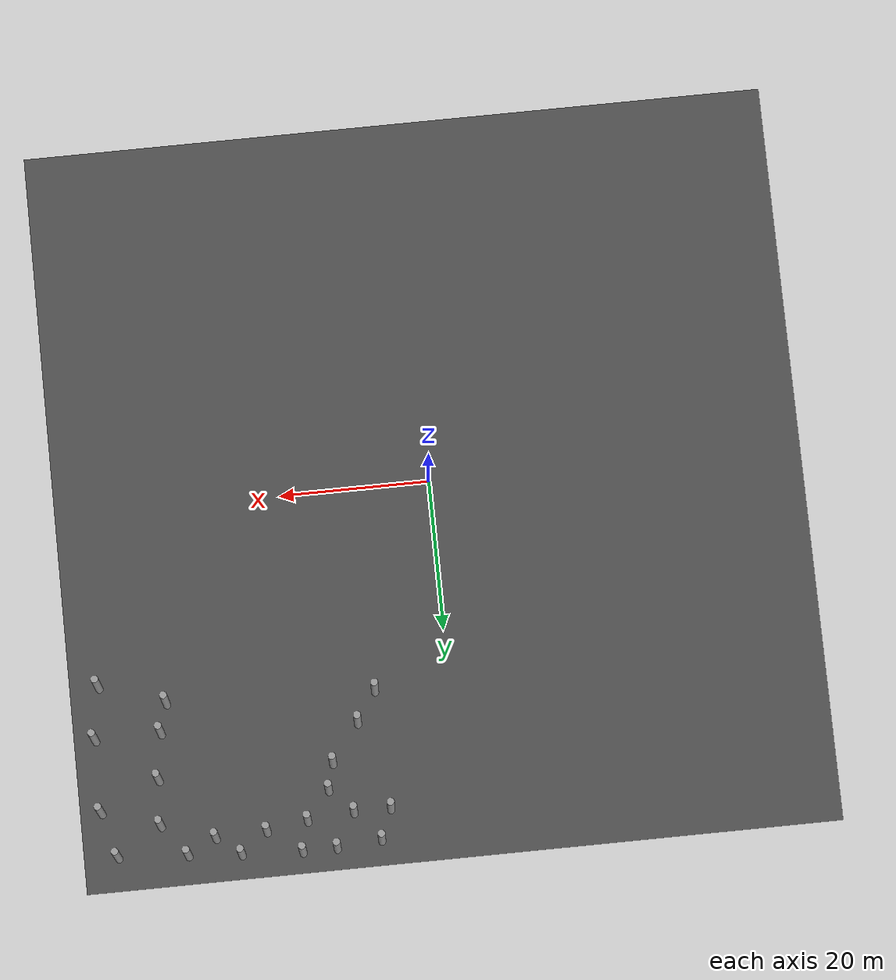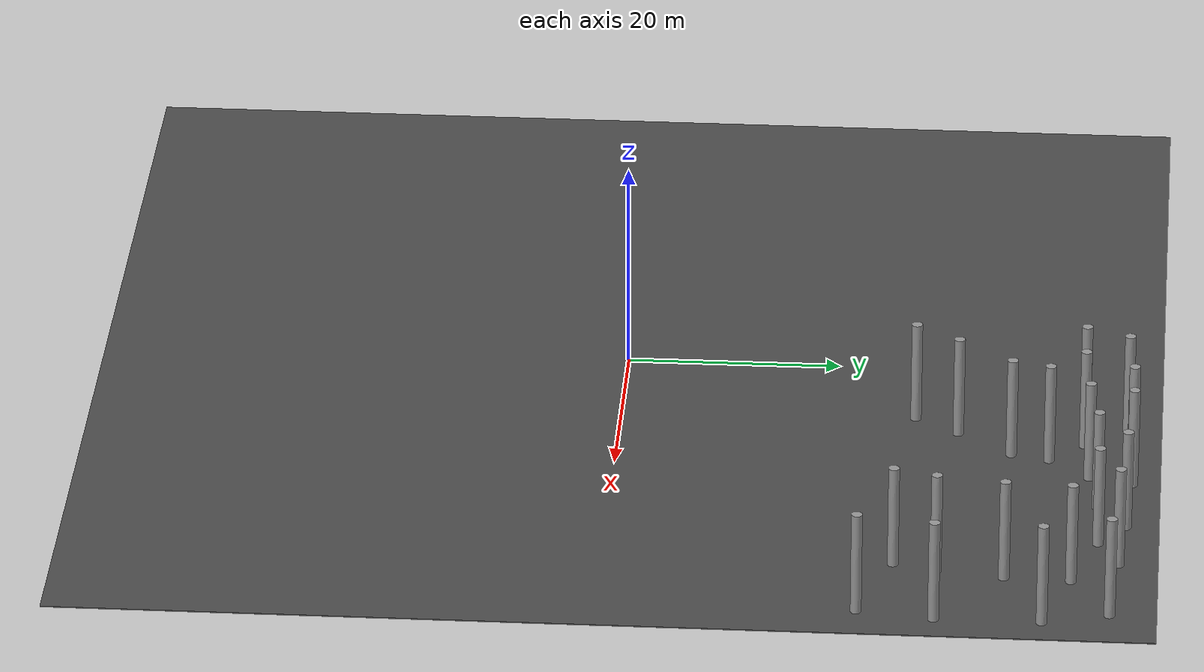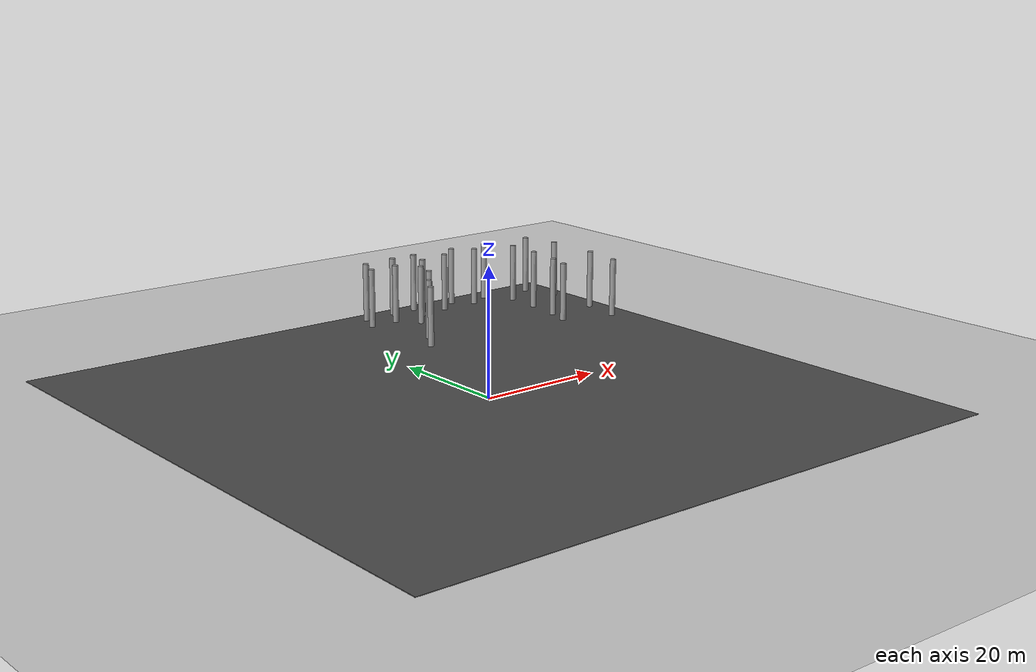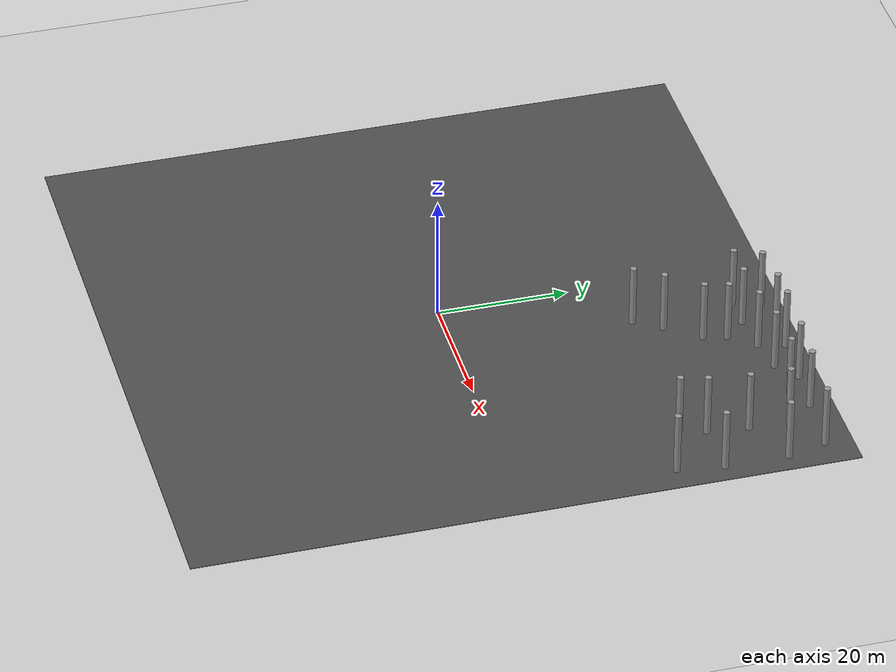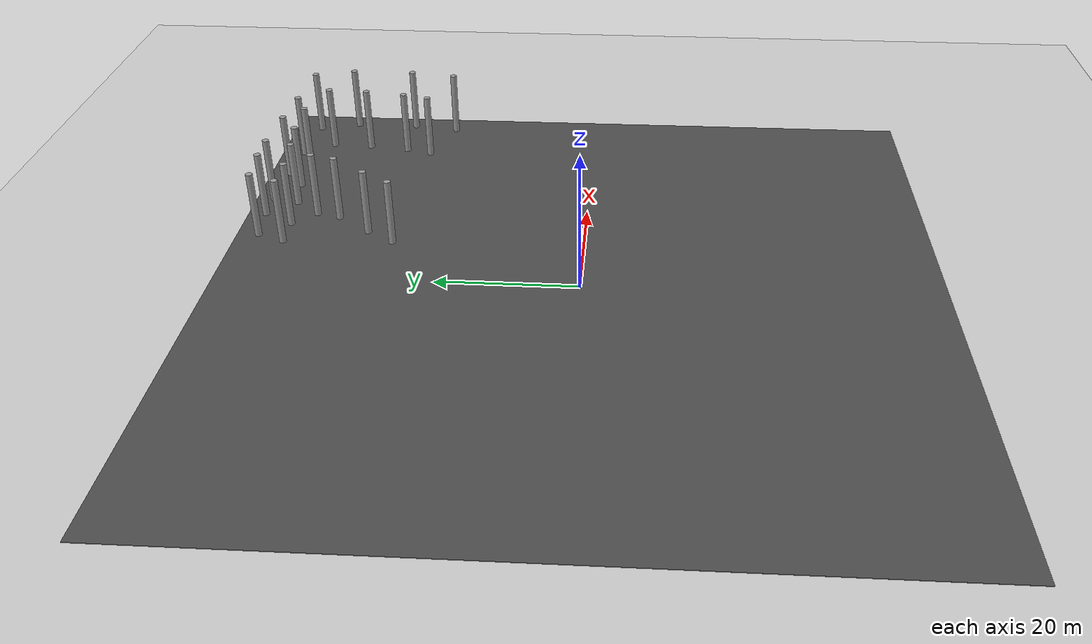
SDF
<sdf version="1.6">
 <world name="default">
  <model name="ground_plane">
   <static>1</static>
   <link name="link">
    <collision name="collision">
     <geometry><plane><normal>0 0 1</normal><size>100 100</size></plane></geometry>
     <surface><friction><ode><mu>100</mu><mu2>50</mu2></ode></friction></surface>
    </collision>
    <visual name="visual">
     <cast_shadows>0</cast_shadows>
     <geometry><plane><normal>0 0 1</normal><size>100 100</size></plane></geometry>
     <material>
      <script><uri>file://media/materials/scripts/gazebo.material</uri><name>Gazebo/Grey</name></script>
     </material>
    </visual>
   </link>
  </model>
  <model name="asphalt_plane">
   <static>1</static>
   <link name="link">
    <collision name="collision"><geometry><box><size>100 100 0.1</size></box></geometry></collision>
    <visual name="visual">
     <cast_shadows>0</cast_shadows>
     <geometry><box><size>100 100 0.1</size></box></geometry>
     <material>
      <script>
       <uri>model://asphalt_plane/materials/scripts</uri>
       <uri>model://asphalt_plane/materials/textures</uri>
       <name>vrc/asphalt</name>
      </script>
     </material>
    </visual>
   </link>
   <pose>0.078502 0.417861 0 0 -0 0</pose>
  </model>
  <model name="forest">
   <link name="link_clone_13_clone_158">
    <pose>11.2805 48.2401 0 0 -0 0</pose>
    <inertial>
     <mass>1000</mass>
     <inertia><ixx>0.145833</ixx><ixy>0</ixy><ixz>0</ixz><iyy>0.145833</iyy><iyz>0</iyz><izz>0.125</izz></inertia>
     <pose>0 0 5 0 -0 0</pose>
    </inertial>
    <visual name="visual">
     <geometry><cylinder><radius>0.5</radius><length>10</length></cylinder></geometry>
     <material>
      <script><name>Gazebo/Grey</name><uri>file://media/materials/scripts/gazebo.material</uri></script>
      <ambient>0.3 0.3 0.3 1</ambient>
      <diffuse>0.7 0.7 0.7 1</diffuse>
      <specular>0.01 0.01 0.01 1</specular>
      <emissive>0 0 0 1</emissive>
      <shader type="vertex"><normal_map>__default__</normal_map></shader>
     </material>
     <pose>0 0 5 0 -0 0</pose>
    </visual>
    <collision name="collision">
     <pose>0 0 5 0 -0 0</pose>
     <geometry><cylinder><radius>0.5</radius><length>10</length></cylinder></geometry>
     <surface>
      <friction>
       <ode><mu>1</mu><mu2>1</mu2><fdir1>0 0 0</fdir1><slip1>0</slip1><slip2>0</slip2></ode>
       <torsional>
        <coefficient>1</coefficient>
        <patch_radius>0</patch_radius>
        <surface_radius>0</surface_radius>
        <use_patch_radius>1</use_patch_radius>
        <ode><slip>0</slip></ode>
       </torsional>
      </friction>
      <bounce><restitution_coefficient>0</restitution_coefficient><threshold>1e+06</threshold></bounce>
      <contact>
       <collide_without_contact>0</collide_without_contact>
       <collide_without_contact_bitmask>1</collide_without_contact_bitmask>
       <collide_bitmask>1</collide_bitmask>
       <ode>
        <soft_cfm>0</soft_cfm>
        <soft_erp>0.2</soft_erp>
        <kp>1e+13</kp>
        <kd>1</kd>
        <max_vel>0.01</max_vel>
        <min_depth>0</min_depth>
       </ode>
       <bullet>
        <split_impulse>1</split_impulse>
        <split_impulse_penetration_threshold>-0.01</split_impulse_penetration_threshold>
        <soft_cfm>0</soft_cfm>
        <soft_erp>0.2</soft_erp>
        <kp>1e+13</kp>
        <kd>1</kd>
       </bullet>
      </contact>
     </surface>
    </collision>
   </link>
   <link name="link_clone_13_clone_159">
    <pose>17.2003 48.7524 0 0 -0 0</pose>
    <inertial>
     <mass>1000</mass>
     <inertia><ixx>0.145833</ixx><ixy>0</ixy><ixz>0</ixz><iyy>0.145833</iyy><iyz>0</iyz><izz>0.125</izz></inertia>
     <pose>0 0 5 0 -0 0</pose>
    </inertial>
    <visual name="visual">
     <geometry><cylinder><radius>0.5</radius><length>10</length></cylinder></geometry>
     <material>
      <script><name>Gazebo/Grey</name><uri>file://media/materials/scripts/gazebo.material</uri></script>
      <ambient>0.3 0.3 0.3 1</ambient>
      <diffuse>0.7 0.7 0.7 1</diffuse>
      <specular>0.01 0.01 0.01 1</specular>
      <emissive>0 0 0 1</emissive>
      <shader type="vertex"><normal_map>__default__</normal_map></shader>
     </material>
     <pose>0 0 5 0 -0 0</pose>
    </visual>
    <collision name="collision">
     <pose>0 0 5 0 -0 0</pose>
     <geometry><cylinder><radius>0.5</radius><length>10</length></cylinder></geometry>
     <surface>
      <friction>
       <ode><mu>1</mu><mu2>1</mu2><fdir1>0 0 0</fdir1><slip1>0</slip1><slip2>0</slip2></ode>
       <torsional>
        <coefficient>1</coefficient>
        <patch_radius>0</patch_radius>
        <surface_radius>0</surface_radius>
        <use_patch_radius>1</use_patch_radius>
        <ode><slip>0</slip></ode>
       </torsional>
      </friction>
      <bounce><restitution_coefficient>0</restitution_coefficient><threshold>1e+06</threshold></bounce>
      <contact>
       <collide_without_contact>0</collide_without_contact>
       <collide_without_contact_bitmask>1</collide_without_contact_bitmask>
       <collide_bitmask>1</collide_bitmask>
       <ode>
        <soft_cfm>0</soft_cfm>
        <soft_erp>0.2</soft_erp>
        <kp>1e+13</kp>
        <kd>1</kd>
        <max_vel>0.01</max_vel>
        <min_depth>0</min_depth>
       </ode>
       <bullet>
        <split_impulse>1</split_impulse>
        <split_impulse_penetration_threshold>-0.01</split_impulse_penetration_threshold>
        <soft_cfm>0</soft_cfm>
        <soft_erp>0.2</soft_erp>
        <kp>1e+13</kp>
        <kd>1</kd>
       </bullet>
      </contact>
     </surface>
    </collision>
   </link>
   <link name="link_clone_13_clone_160">
    <pose>21.7239 48.8043 -0 0 -0 0</pose>
    <inertial>
     <mass>1000</mass>
     <inertia><ixx>0.145833</ixx><ixy>0</ixy><ixz>0</ixz><iyy>0.145833</iyy><iyz>0</iyz><izz>0.125</izz></inertia>
     <pose>0 0 5 0 -0 0</pose>
    </inertial>
    <visual name="visual">
     <geometry><cylinder><radius>0.5</radius><length>10</length></cylinder></geometry>
     <material>
      <script><name>Gazebo/Grey</name><uri>file://media/materials/scripts/gazebo.material</uri></script>
      <ambient>0.3 0.3 0.3 1</ambient>
      <diffuse>0.7 0.7 0.7 1</diffuse>
      <specular>0.01 0.01 0.01 1</specular>
      <emissive>0 0 0 1</emissive>
      <shader type="vertex"><normal_map>__default__</normal_map></shader>
     </material>
     <pose>0 0 5 0 -0 0</pose>
    </visual>
    <collision name="collision">
     <pose>0 0 5 0 -0 0</pose>
     <geometry><cylinder><radius>0.5</radius><length>10</length></cylinder></geometry>
     <surface>
      <friction>
       <ode><mu>1</mu><mu2>1</mu2><fdir1>0 0 0</fdir1><slip1>0</slip1><slip2>0</slip2></ode>
       <torsional>
        <coefficient>1</coefficient>
        <patch_radius>0</patch_radius>
        <surface_radius>0</surface_radius>
        <use_patch_radius>1</use_patch_radius>
        <ode><slip>0</slip></ode>
       </torsional>
      </friction>
      <bounce><restitution_coefficient>0</restitution_coefficient><threshold>1e+06</threshold></bounce>
      <contact>
       <collide_without_contact>0</collide_without_contact>
       <collide_without_contact_bitmask>1</collide_without_contact_bitmask>
       <collide_bitmask>1</collide_bitmask>
       <ode>
        <soft_cfm>0</soft_cfm>
        <soft_erp>0.2</soft_erp>
        <kp>1e+13</kp>
        <kd>1</kd>
        <max_vel>0.01</max_vel>
        <min_depth>0</min_depth>
       </ode>
       <bullet>
        <split_impulse>1</split_impulse>
        <split_impulse_penetration_threshold>-0.01</split_impulse_penetration_threshold>
        <soft_cfm>0</soft_cfm>
        <soft_erp>0.2</soft_erp>
        <kp>1e+13</kp>
        <kd>1</kd>
       </bullet>
      </contact>
     </surface>
    </collision>
   </link>
   <link name="link_clone_13_clone_161">
    <pose>29.7239 48.3595 -0 0 -0 0</pose>
    <inertial>
     <mass>1000</mass>
     <inertia><ixx>0.145833</ixx><ixy>0</ixy><ixz>0</ixz><iyy>0.145833</iyy><iyz>0</iyz><izz>0.125</izz></inertia>
     <pose>0 0 5 0 -0 0</pose>
    </inertial>
    <visual name="visual">
     <geometry><cylinder><radius>0.5</radius><length>10</length></cylinder></geometry>
     <material>
      <script><name>Gazebo/Grey</name><uri>file://media/materials/scripts/gazebo.material</uri></script>
      <ambient>0.3 0.3 0.3 1</ambient>
      <diffuse>0.7 0.7 0.7 1</diffuse>
      <specular>0.01 0.01 0.01 1</specular>
      <emissive>0 0 0 1</emissive>
      <shader type="vertex"><normal_map>__default__</normal_map></shader>
     </material>
     <pose>0 0 5 0 -0 0</pose>
    </visual>
    <collision name="collision">
     <pose>0 0 5 0 -0 0</pose>
     <geometry><cylinder><radius>0.5</radius><length>10</length></cylinder></geometry>
     <surface>
      <friction>
       <ode><mu>1</mu><mu2>1</mu2><fdir1>0 0 0</fdir1><slip1>0</slip1><slip2>0</slip2></ode>
       <torsional>
        <coefficient>1</coefficient>
        <patch_radius>0</patch_radius>
        <surface_radius>0</surface_radius>
        <use_patch_radius>1</use_patch_radius>
        <ode><slip>0</slip></ode>
       </torsional>
      </friction>
      <bounce><restitution_coefficient>0</restitution_coefficient><threshold>1e+06</threshold></bounce>
      <contact>
       <collide_without_contact>0</collide_without_contact>
       <collide_without_contact_bitmask>1</collide_without_contact_bitmask>
       <collide_bitmask>1</collide_bitmask>
       <ode>
        <soft_cfm>0</soft_cfm>
        <soft_erp>0.2</soft_erp>
        <kp>1e+13</kp>
        <kd>1</kd>
        <max_vel>0.01</max_vel>
        <min_depth>0</min_depth>
       </ode>
       <bullet>
        <split_impulse>1</split_impulse>
        <split_impulse_penetration_threshold>-0.01</split_impulse_penetration_threshold>
        <soft_cfm>0</soft_cfm>
        <soft_erp>0.2</soft_erp>
        <kp>1e+13</kp>
        <kd>1</kd>
       </bullet>
      </contact>
     </surface>
    </collision>
   </link>
   <link name="link_clone_13_clone_162">
    <pose>36.7239 47.8043 -0 0 -0 0</pose>
    <inertial>
     <mass>1000</mass>
     <inertia><ixx>0.145833</ixx><ixy>0</ixy><ixz>0</ixz><iyy>0.145833</iyy><iyz>0</iyz><izz>0.125</izz></inertia>
     <pose>0 0 5 0 -0 0</pose>
    </inertial>
    <visual name="visual">
     <geometry><cylinder><radius>0.5</radius><length>10</length></cylinder></geometry>
     <material>
      <script><name>Gazebo/Grey</name><uri>file://media/materials/scripts/gazebo.material</uri></script>
      <ambient>0.3 0.3 0.3 1</ambient>
      <diffuse>0.7 0.7 0.7 1</diffuse>
      <specular>0.01 0.01 0.01 1</specular>
      <emissive>0 0 0 1</emissive>
      <shader type="vertex"><normal_map>__default__</normal_map></shader>
     </material>
     <pose>0 0 5 0 -0 0</pose>
    </visual>
    <collision name="collision">
     <pose>0 0 5 0 -0 0</pose>
     <geometry><cylinder><radius>0.5</radius><length>10</length></cylinder></geometry>
     <surface>
      <friction>
       <ode><mu>1</mu><mu2>1</mu2><fdir1>0 0 0</fdir1><slip1>0</slip1><slip2>0</slip2></ode>
       <torsional>
        <coefficient>1</coefficient>
        <patch_radius>0</patch_radius>
        <surface_radius>0</surface_radius>
        <use_patch_radius>1</use_patch_radius>
        <ode><slip>0</slip></ode>
       </torsional>
      </friction>
      <bounce><restitution_coefficient>0</restitution_coefficient><threshold>1e+06</threshold></bounce>
      <contact>
       <collide_without_contact>0</collide_without_contact>
       <collide_without_contact_bitmask>1</collide_without_contact_bitmask>
       <collide_bitmask>1</collide_bitmask>
       <ode>
        <soft_cfm>0</soft_cfm>
        <soft_erp>0.2</soft_erp>
        <kp>1e+13</kp>
        <kd>1</kd>
        <max_vel>0.01</max_vel>
        <min_depth>0</min_depth>
       </ode>
       <bullet>
        <split_impulse>1</split_impulse>
        <split_impulse_penetration_threshold>-0.01</split_impulse_penetration_threshold>
        <soft_cfm>0</soft_cfm>
        <soft_erp>0.2</soft_erp>
        <kp>1e+13</kp>
        <kd>1</kd>
       </bullet>
      </contact>
     </surface>
    </collision>
   </link>
   <link name="link_clone_13_clone_163">
    <pose>45.9123 47.16 -0 0 -0 0</pose>
    <inertial>
     <mass>1000</mass>
     <inertia><ixx>0.145833</ixx><ixy>0</ixy><ixz>0</ixz><iyy>0.145833</iyy><iyz>0</iyz><izz>0.125</izz></inertia>
     <pose>0 0 5 0 -0 0</pose>
    </inertial>
    <visual name="visual">
     <geometry><cylinder><radius>0.5</radius><length>10</length></cylinder></geometry>
     <material>
      <script><name>Gazebo/Grey</name><uri>file://media/materials/scripts/gazebo.material</uri></script>
      <ambient>0.3 0.3 0.3 1</ambient>
      <diffuse>0.7 0.7 0.7 1</diffuse>
      <specular>0.01 0.01 0.01 1</specular>
      <emissive>0 0 0 1</emissive>
      <shader type="vertex"><normal_map>__default__</normal_map></shader>
     </material>
     <pose>0 0 5 0 -0 0</pose>
    </visual>
    <collision name="collision">
     <pose>0 0 5 0 -0 0</pose>
     <geometry><cylinder><radius>0.5</radius><length>10</length></cylinder></geometry>
     <surface>
      <friction>
       <ode><mu>1</mu><mu2>1</mu2><fdir1>0 0 0</fdir1><slip1>0</slip1><slip2>0</slip2></ode>
       <torsional>
        <coefficient>1</coefficient>
        <patch_radius>0</patch_radius>
        <surface_radius>0</surface_radius>
        <use_patch_radius>1</use_patch_radius>
        <ode><slip>0</slip></ode>
       </torsional>
      </friction>
      <bounce><restitution_coefficient>0</restitution_coefficient><threshold>1e+06</threshold></bounce>
      <contact>
       <collide_without_contact>0</collide_without_contact>
       <collide_without_contact_bitmask>1</collide_without_contact_bitmask>
       <collide_bitmask>1</collide_bitmask>
       <ode>
        <soft_cfm>0</soft_cfm>
        <soft_erp>0.2</soft_erp>
        <kp>1e+13</kp>
        <kd>1</kd>
        <max_vel>0.01</max_vel>
        <min_depth>0</min_depth>
       </ode>
       <bullet>
        <split_impulse>1</split_impulse>
        <split_impulse_penetration_threshold>-0.01</split_impulse_penetration_threshold>
        <soft_cfm>0</soft_cfm>
        <soft_erp>0.2</soft_erp>
        <kp>1e+13</kp>
        <kd>1</kd>
       </bullet>
      </contact>
     </surface>
    </collision>
   </link>
   <link name="link_clone_13_clone_164">
    <pose>47.609 41.1192 -0 0 -0 0</pose>
    <inertial>
     <mass>1000</mass>
     <inertia><ixx>0.145833</ixx><ixy>0</ixy><ixz>0</ixz><iyy>0.145833</iyy><iyz>0</iyz><izz>0.125</izz></inertia>
     <pose>0 0 5 0 -0 0</pose>
    </inertial>
    <visual name="visual">
     <geometry><cylinder><radius>0.5</radius><length>10</length></cylinder></geometry>
     <material>
      <script><name>Gazebo/Grey</name><uri>file://media/materials/scripts/gazebo.material</uri></script>
      <ambient>0.3 0.3 0.3 1</ambient>
      <diffuse>0.7 0.7 0.7 1</diffuse>
      <specular>0.01 0.01 0.01 1</specular>
      <emissive>0 0 0 1</emissive>
      <shader type="vertex"><normal_map>__default__</normal_map></shader>
     </material>
     <pose>0 0 5 0 -0 0</pose>
    </visual>
    <collision name="collision">
     <pose>0 0 5 0 -0 0</pose>
     <geometry><cylinder><radius>0.5</radius><length>10</length></cylinder></geometry>
     <surface>
      <friction>
       <ode><mu>1</mu><mu2>1</mu2><fdir1>0 0 0</fdir1><slip1>0</slip1><slip2>0</slip2></ode>
       <torsional>
        <coefficient>1</coefficient>
        <patch_radius>0</patch_radius>
        <surface_radius>0</surface_radius>
        <use_patch_radius>1</use_patch_radius>
        <ode><slip>0</slip></ode>
       </torsional>
      </friction>
      <bounce><restitution_coefficient>0</restitution_coefficient><threshold>1e+06</threshold></bounce>
      <contact>
       <collide_without_contact>0</collide_without_contact>
       <collide_without_contact_bitmask>1</collide_without_contact_bitmask>
       <collide_bitmask>1</collide_bitmask>
       <ode>
        <soft_cfm>0</soft_cfm>
        <soft_erp>0.2</soft_erp>
        <kp>1e+13</kp>
        <kd>1</kd>
        <max_vel>0.01</max_vel>
        <min_depth>0</min_depth>
       </ode>
       <bullet>
        <split_impulse>1</split_impulse>
        <split_impulse_penetration_threshold>-0.01</split_impulse_penetration_threshold>
        <soft_cfm>0</soft_cfm>
        <soft_erp>0.2</soft_erp>
        <kp>1e+13</kp>
        <kd>1</kd>
       </bullet>
      </contact>
     </surface>
    </collision>
   </link>
   <link name="link_clone_13_clone_165">
    <pose>47.6069 31.429 -0 0 -0 0</pose>
    <inertial>
     <mass>1000</mass>
     <inertia><ixx>0.145833</ixx><ixy>0</ixy><ixz>0</ixz><iyy>0.145833</iyy><iyz>0</iyz><izz>0.125</izz></inertia>
     <pose>0 0 5 0 -0 0</pose>
    </inertial>
    <visual name="visual">
     <geometry><cylinder><radius>0.5</radius><length>10</length></cylinder></geometry>
     <material>
      <script><name>Gazebo/Grey</name><uri>file://media/materials/scripts/gazebo.material</uri></script>
      <ambient>0.3 0.3 0.3 1</ambient>
      <diffuse>0.7 0.7 0.7 1</diffuse>
      <specular>0.01 0.01 0.01 1</specular>
      <emissive>0 0 0 1</emissive>
      <shader type="vertex"><normal_map>__default__</normal_map></shader>
     </material>
     <pose>0 0 5 0 -0 0</pose>
    </visual>
    <collision name="collision">
     <pose>0 0 5 0 -0 0</pose>
     <geometry><cylinder><radius>0.5</radius><length>10</length></cylinder></geometry>
     <surface>
      <friction>
       <ode><mu>1</mu><mu2>1</mu2><fdir1>0 0 0</fdir1><slip1>0</slip1><slip2>0</slip2></ode>
       <torsional>
        <coefficient>1</coefficient>
        <patch_radius>0</patch_radius>
        <surface_radius>0</surface_radius>
        <use_patch_radius>1</use_patch_radius>
        <ode><slip>0</slip></ode>
       </torsional>
      </friction>
      <bounce><restitution_coefficient>0</restitution_coefficient><threshold>1e+06</threshold></bounce>
      <contact>
       <collide_without_contact>0</collide_without_contact>
       <collide_without_contact_bitmask>1</collide_without_contact_bitmask>
       <collide_bitmask>1</collide_bitmask>
       <ode>
        <soft_cfm>0</soft_cfm>
        <soft_erp>0.2</soft_erp>
        <kp>1e+13</kp>
        <kd>1</kd>
        <max_vel>0.01</max_vel>
        <min_depth>0</min_depth>
       </ode>
       <bullet>
        <split_impulse>1</split_impulse>
        <split_impulse_penetration_threshold>-0.01</split_impulse_penetration_threshold>
        <soft_cfm>0</soft_cfm>
        <soft_erp>0.2</soft_erp>
        <kp>1e+13</kp>
        <kd>1</kd>
       </bullet>
      </contact>
     </surface>
    </collision>
   </link>
   <link name="link_clone_13_clone_166">
    <pose>46.5952 24.4572 -0 0 -0 0</pose>
    <inertial>
     <mass>1000</mass>
     <inertia><ixx>0.145833</ixx><ixy>0</ixy><ixz>0</ixz><iyy>0.145833</iyy><iyz>0</iyz><izz>0.125</izz></inertia>
     <pose>0 0 5 0 -0 0</pose>
    </inertial>
    <visual name="visual">
     <geometry><cylinder><radius>0.5</radius><length>10</length></cylinder></geometry>
     <material>
      <script><name>Gazebo/Grey</name><uri>file://media/materials/scripts/gazebo.material</uri></script>
      <ambient>0.3 0.3 0.3 1</ambient>
      <diffuse>0.7 0.7 0.7 1</diffuse>
      <specular>0.01 0.01 0.01 1</specular>
      <emissive>0 0 0 1</emissive>
      <shader type="vertex"><normal_map>__default__</normal_map></shader>
     </material>
     <pose>0 0 5 0 -0 0</pose>
    </visual>
    <collision name="collision">
     <pose>0 0 5 0 -0 0</pose>
     <geometry><cylinder><radius>0.5</radius><length>10</length></cylinder></geometry>
     <surface>
      <friction>
       <ode><mu>1</mu><mu2>1</mu2><fdir1>0 0 0</fdir1><slip1>0</slip1><slip2>0</slip2></ode>
       <torsional>
        <coefficient>1</coefficient>
        <patch_radius>0</patch_radius>
        <surface_radius>0</surface_radius>
        <use_patch_radius>1</use_patch_radius>
        <ode><slip>0</slip></ode>
       </torsional>
      </friction>
      <bounce><restitution_coefficient>0</restitution_coefficient><threshold>1e+06</threshold></bounce>
      <contact>
       <collide_without_contact>0</collide_without_contact>
       <collide_without_contact_bitmask>1</collide_without_contact_bitmask>
       <collide_bitmask>1</collide_bitmask>
       <ode>
        <soft_cfm>0</soft_cfm>
        <soft_erp>0.2</soft_erp>
        <kp>1e+13</kp>
        <kd>1</kd>
        <max_vel>0.01</max_vel>
        <min_depth>0</min_depth>
       </ode>
       <bullet>
        <split_impulse>1</split_impulse>
        <split_impulse_penetration_threshold>-0.01</split_impulse_penetration_threshold>
        <soft_cfm>0</soft_cfm>
        <soft_erp>0.2</soft_erp>
        <kp>1e+13</kp>
        <kd>1</kd>
       </bullet>
      </contact>
     </surface>
    </collision>
   </link>
   <link name="link_clone_13_clone_177">
    <pose>9.69017 44.235 0 0 -0 0</pose>
    <inertial>
     <mass>1000</mass>
     <inertia><ixx>0.145833</ixx><ixy>0</ixy><ixz>0</ixz><iyy>0.145833</iyy><iyz>0</iyz><izz>0.125</izz></inertia>
     <pose>0 0 5 0 -0 0</pose>
    </inertial>
    <visual name="visual">
     <geometry><cylinder><radius>0.5</radius><length>10</length></cylinder></geometry>
     <material>
      <script><name>Gazebo/Grey</name><uri>file://media/materials/scripts/gazebo.material</uri></script>
      <ambient>0.3 0.3 0.3 1</ambient>
      <diffuse>0.7 0.7 0.7 1</diffuse>
      <specular>0.01 0.01 0.01 1</specular>
      <emissive>0 0 0 1</emissive>
      <shader type="vertex"><normal_map>__default__</normal_map></shader>
     </material>
     <pose>0 0 5 0 -0 0</pose>
    </visual>
    <collision name="collision">
     <pose>0 0 5 0 -0 0</pose>
     <geometry><cylinder><radius>0.5</radius><length>10</length></cylinder></geometry>
     <surface>
      <friction>
       <ode><mu>1</mu><mu2>1</mu2><fdir1>0 0 0</fdir1><slip1>0</slip1><slip2>0</slip2></ode>
       <torsional>
        <coefficient>1</coefficient>
        <patch_radius>0</patch_radius>
        <surface_radius>0</surface_radius>
        <use_patch_radius>1</use_patch_radius>
        <ode><slip>0</slip></ode>
       </torsional>
      </friction>
      <bounce><restitution_coefficient>0</restitution_coefficient><threshold>1e+06</threshold></bounce>
      <contact>
       <collide_without_contact>0</collide_without_contact>
       <collide_without_contact_bitmask>1</collide_without_contact_bitmask>
       <collide_bitmask>1</collide_bitmask>
       <ode>
        <soft_cfm>0</soft_cfm>
        <soft_erp>0.2</soft_erp>
        <kp>1e+13</kp>
        <kd>1</kd>
        <max_vel>0.01</max_vel>
        <min_depth>0</min_depth>
       </ode>
       <bullet>
        <split_impulse>1</split_impulse>
        <split_impulse_penetration_threshold>-0.01</split_impulse_penetration_threshold>
        <soft_cfm>0</soft_cfm>
        <soft_erp>0.2</soft_erp>
        <kp>1e+13</kp>
        <kd>1</kd>
       </bullet>
      </contact>
     </surface>
    </collision>
   </link>
   <link name="link_clone_13_clone_178">
    <pose>14.5858 44.263 0 0 -0 0</pose>
    <inertial>
     <mass>1000</mass>
     <inertia><ixx>0.145833</ixx><ixy>0</ixy><ixz>0</ixz><iyy>0.145833</iyy><iyz>0</iyz><izz>0.125</izz></inertia>
     <pose>0 0 5 0 -0 0</pose>
    </inertial>
    <visual name="visual">
     <geometry><cylinder><radius>0.5</radius><length>10</length></cylinder></geometry>
     <material>
      <script><name>Gazebo/Grey</name><uri>file://media/materials/scripts/gazebo.material</uri></script>
      <ambient>0.3 0.3 0.3 1</ambient>
      <diffuse>0.7 0.7 0.7 1</diffuse>
      <specular>0.01 0.01 0.01 1</specular>
      <emissive>0 0 0 1</emissive>
      <shader type="vertex"><normal_map>__default__</normal_map></shader>
     </material>
     <pose>0 0 5 0 -0 0</pose>
    </visual>
    <collision name="collision">
     <pose>0 0 5 0 -0 0</pose>
     <geometry><cylinder><radius>0.5</radius><length>10</length></cylinder></geometry>
     <surface>
      <friction>
       <ode><mu>1</mu><mu2>1</mu2><fdir1>0 0 0</fdir1><slip1>0</slip1><slip2>0</slip2></ode>
       <torsional>
        <coefficient>1</coefficient>
        <patch_radius>0</patch_radius>
        <surface_radius>0</surface_radius>
        <use_patch_radius>1</use_patch_radius>
        <ode><slip>0</slip></ode>
       </torsional>
      </friction>
      <bounce><restitution_coefficient>0</restitution_coefficient><threshold>1e+06</threshold></bounce>
      <contact>
       <collide_without_contact>0</collide_without_contact>
       <collide_without_contact_bitmask>1</collide_without_contact_bitmask>
       <collide_bitmask>1</collide_bitmask>
       <ode>
        <soft_cfm>0</soft_cfm>
        <soft_erp>0.2</soft_erp>
        <kp>1e+13</kp>
        <kd>1</kd>
        <max_vel>0.01</max_vel>
        <min_depth>0</min_depth>
       </ode>
       <bullet>
        <split_impulse>1</split_impulse>
        <split_impulse_penetration_threshold>-0.01</split_impulse_penetration_threshold>
        <soft_cfm>0</soft_cfm>
        <soft_erp>0.2</soft_erp>
        <kp>1e+13</kp>
        <kd>1</kd>
       </bullet>
      </contact>
     </surface>
    </collision>
   </link>
   <link name="link_clone_13_clone_179">
    <pose>20.7239 44.8043 -0 0 -0 0</pose>
    <inertial>
     <mass>1000</mass>
     <inertia><ixx>0.145833</ixx><ixy>0</ixy><ixz>0</ixz><iyy>0.145833</iyy><iyz>0</iyz><izz>0.125</izz></inertia>
     <pose>0 0 5 0 -0 0</pose>
    </inertial>
    <visual name="visual">
     <geometry><cylinder><radius>0.5</radius><length>10</length></cylinder></geometry>
     <material>
      <script><name>Gazebo/Grey</name><uri>file://media/materials/scripts/gazebo.material</uri></script>
      <ambient>0.3 0.3 0.3 1</ambient>
      <diffuse>0.7 0.7 0.7 1</diffuse>
      <specular>0.01 0.01 0.01 1</specular>
      <emissive>0 0 0 1</emissive>
      <shader type="vertex"><normal_map>__default__</normal_map></shader>
     </material>
     <pose>0 0 5 0 -0 0</pose>
    </visual>
    <collision name="collision">
     <pose>0 0 5 0 -0 0</pose>
     <geometry><cylinder><radius>0.5</radius><length>10</length></cylinder></geometry>
     <surface>
      <friction>
       <ode><mu>1</mu><mu2>1</mu2><fdir1>0 0 0</fdir1><slip1>0</slip1><slip2>0</slip2></ode>
       <torsional>
        <coefficient>1</coefficient>
        <patch_radius>0</patch_radius>
        <surface_radius>0</surface_radius>
        <use_patch_radius>1</use_patch_radius>
        <ode><slip>0</slip></ode>
       </torsional>
      </friction>
      <bounce><restitution_coefficient>0</restitution_coefficient><threshold>1e+06</threshold></bounce>
      <contact>
       <collide_without_contact>0</collide_without_contact>
       <collide_without_contact_bitmask>1</collide_without_contact_bitmask>
       <collide_bitmask>1</collide_bitmask>
       <ode>
        <soft_cfm>0</soft_cfm>
        <soft_erp>0.2</soft_erp>
        <kp>1e+13</kp>
        <kd>1</kd>
        <max_vel>0.01</max_vel>
        <min_depth>0</min_depth>
       </ode>
       <bullet>
        <split_impulse>1</split_impulse>
        <split_impulse_penetration_threshold>-0.01</split_impulse_penetration_threshold>
        <soft_cfm>0</soft_cfm>
        <soft_erp>0.2</soft_erp>
        <kp>1e+13</kp>
        <kd>1</kd>
       </bullet>
      </contact>
     </surface>
    </collision>
   </link>
   <link name="link_clone_13_clone_180">
    <pose>26.1694 45.6768 -0 0 -0 0</pose>
    <inertial>
     <mass>1000</mass>
     <inertia><ixx>0.145833</ixx><ixy>0</ixy><ixz>0</ixz><iyy>0.145833</iyy><iyz>0</iyz><izz>0.125</izz></inertia>
     <pose>0 0 5 0 -0 0</pose>
    </inertial>
    <visual name="visual">
     <geometry><cylinder><radius>0.5</radius><length>10</length></cylinder></geometry>
     <material>
      <script><name>Gazebo/Grey</name><uri>file://media/materials/scripts/gazebo.material</uri></script>
      <ambient>0.3 0.3 0.3 1</ambient>
      <diffuse>0.7 0.7 0.7 1</diffuse>
      <specular>0.01 0.01 0.01 1</specular>
      <emissive>0 0 0 1</emissive>
      <shader type="vertex"><normal_map>__default__</normal_map></shader>
     </material>
     <pose>0 0 5 0 -0 0</pose>
    </visual>
    <collision name="collision">
     <pose>0 0 5 0 -0 0</pose>
     <geometry><cylinder><radius>0.5</radius><length>10</length></cylinder></geometry>
     <surface>
      <friction>
       <ode><mu>1</mu><mu2>1</mu2><fdir1>0 0 0</fdir1><slip1>0</slip1><slip2>0</slip2></ode>
       <torsional>
        <coefficient>1</coefficient>
        <patch_radius>0</patch_radius>
        <surface_radius>0</surface_radius>
        <use_patch_radius>1</use_patch_radius>
        <ode><slip>0</slip></ode>
       </torsional>
      </friction>
      <bounce><restitution_coefficient>0</restitution_coefficient><threshold>1e+06</threshold></bounce>
      <contact>
       <collide_without_contact>0</collide_without_contact>
       <collide_without_contact_bitmask>1</collide_without_contact_bitmask>
       <collide_bitmask>1</collide_bitmask>
       <ode>
        <soft_cfm>0</soft_cfm>
        <soft_erp>0.2</soft_erp>
        <kp>1e+13</kp>
        <kd>1</kd>
        <max_vel>0.01</max_vel>
        <min_depth>0</min_depth>
       </ode>
       <bullet>
        <split_impulse>1</split_impulse>
        <split_impulse_penetration_threshold>-0.01</split_impulse_penetration_threshold>
        <soft_cfm>0</soft_cfm>
        <soft_erp>0.2</soft_erp>
        <kp>1e+13</kp>
        <kd>1</kd>
       </bullet>
      </contact>
     </surface>
    </collision>
   </link>
   <link name="link_clone_13_clone_181">
    <pose>32.9378 45.8692 -0 0 -0 0</pose>
    <inertial>
     <mass>1000</mass>
     <inertia><ixx>0.145833</ixx><ixy>0</ixy><ixz>0</ixz><iyy>0.145833</iyy><iyz>0</iyz><izz>0.125</izz></inertia>
     <pose>0 0 5 0 -0 0</pose>
    </inertial>
    <visual name="visual">
     <geometry><cylinder><radius>0.5</radius><length>10</length></cylinder></geometry>
     <material>
      <script><name>Gazebo/Grey</name><uri>file://media/materials/scripts/gazebo.material</uri></script>
      <ambient>0.3 0.3 0.3 1</ambient>
      <diffuse>0.7 0.7 0.7 1</diffuse>
      <specular>0.01 0.01 0.01 1</specular>
      <emissive>0 0 0 1</emissive>
      <shader type="vertex"><normal_map>__default__</normal_map></shader>
     </material>
     <pose>0 0 5 0 -0 0</pose>
    </visual>
    <collision name="collision">
     <pose>0 0 5 0 -0 0</pose>
     <geometry><cylinder><radius>0.5</radius><length>10</length></cylinder></geometry>
     <surface>
      <friction>
       <ode><mu>1</mu><mu2>1</mu2><fdir1>0 0 0</fdir1><slip1>0</slip1><slip2>0</slip2></ode>
       <torsional>
        <coefficient>1</coefficient>
        <patch_radius>0</patch_radius>
        <surface_radius>0</surface_radius>
        <use_patch_radius>1</use_patch_radius>
        <ode><slip>0</slip></ode>
       </torsional>
      </friction>
      <bounce><restitution_coefficient>0</restitution_coefficient><threshold>1e+06</threshold></bounce>
      <contact>
       <collide_without_contact>0</collide_without_contact>
       <collide_without_contact_bitmask>1</collide_without_contact_bitmask>
       <collide_bitmask>1</collide_bitmask>
       <ode>
        <soft_cfm>0</soft_cfm>
        <soft_erp>0.2</soft_erp>
        <kp>1e+13</kp>
        <kd>1</kd>
        <max_vel>0.01</max_vel>
        <min_depth>0</min_depth>
       </ode>
       <bullet>
        <split_impulse>1</split_impulse>
        <split_impulse_penetration_threshold>-0.01</split_impulse_penetration_threshold>
        <soft_cfm>0</soft_cfm>
        <soft_erp>0.2</soft_erp>
        <kp>1e+13</kp>
        <kd>1</kd>
       </bullet>
      </contact>
     </surface>
    </collision>
   </link>
   <link name="link_clone_13_clone_182">
    <pose>39.9797 43.5684 -0 0 -0 0</pose>
    <inertial>
     <mass>1000</mass>
     <inertia><ixx>0.145833</ixx><ixy>0</ixy><ixz>0</ixz><iyy>0.145833</iyy><iyz>0</iyz><izz>0.125</izz></inertia>
     <pose>0 0 5 0 -0 0</pose>
    </inertial>
    <visual name="visual">
     <geometry><cylinder><radius>0.5</radius><length>10</length></cylinder></geometry>
     <material>
      <script><name>Gazebo/Grey</name><uri>file://media/materials/scripts/gazebo.material</uri></script>
      <ambient>0.3 0.3 0.3 1</ambient>
      <diffuse>0.7 0.7 0.7 1</diffuse>
      <specular>0.01 0.01 0.01 1</specular>
      <emissive>0 0 0 1</emissive>
      <shader type="vertex"><normal_map>__default__</normal_map></shader>
     </material>
     <pose>0 0 5 0 -0 0</pose>
    </visual>
    <collision name="collision">
     <pose>0 0 5 0 -0 0</pose>
     <geometry><cylinder><radius>0.5</radius><length>10</length></cylinder></geometry>
     <surface>
      <friction>
       <ode><mu>1</mu><mu2>1</mu2><fdir1>0 0 0</fdir1><slip1>0</slip1><slip2>0</slip2></ode>
       <torsional>
        <coefficient>1</coefficient>
        <patch_radius>0</patch_radius>
        <surface_radius>0</surface_radius>
        <use_patch_radius>1</use_patch_radius>
        <ode><slip>0</slip></ode>
       </torsional>
      </friction>
      <bounce><restitution_coefficient>0</restitution_coefficient><threshold>1e+06</threshold></bounce>
      <contact>
       <collide_without_contact>0</collide_without_contact>
       <collide_without_contact_bitmask>1</collide_without_contact_bitmask>
       <collide_bitmask>1</collide_bitmask>
       <ode>
        <soft_cfm>0</soft_cfm>
        <soft_erp>0.2</soft_erp>
        <kp>1e+13</kp>
        <kd>1</kd>
        <max_vel>0.01</max_vel>
        <min_depth>0</min_depth>
       </ode>
       <bullet>
        <split_impulse>1</split_impulse>
        <split_impulse_penetration_threshold>-0.01</split_impulse_penetration_threshold>
        <soft_cfm>0</soft_cfm>
        <soft_erp>0.2</soft_erp>
        <kp>1e+13</kp>
        <kd>1</kd>
       </bullet>
      </contact>
     </surface>
    </collision>
   </link>
   <link name="link_clone_13_clone_183">
    <pose>39.7296 37.5159 -0 0 -0 0</pose>
    <inertial>
     <mass>1000</mass>
     <inertia><ixx>0.145833</ixx><ixy>0</ixy><ixz>0</ixz><iyy>0.145833</iyy><iyz>0</iyz><izz>0.125</izz></inertia>
     <pose>0 0 5 0 -0 0</pose>
    </inertial>
    <visual name="visual">
     <geometry><cylinder><radius>0.5</radius><length>10</length></cylinder></geometry>
     <material>
      <script><name>Gazebo/Grey</name><uri>file://media/materials/scripts/gazebo.material</uri></script>
      <ambient>0.3 0.3 0.3 1</ambient>
      <diffuse>0.7 0.7 0.7 1</diffuse>
      <specular>0.01 0.01 0.01 1</specular>
      <emissive>0 0 0 1</emissive>
      <shader type="vertex"><normal_map>__default__</normal_map></shader>
     </material>
     <pose>0 0 5 0 -0 0</pose>
    </visual>
    <collision name="collision">
     <pose>0 0 5 0 -0 0</pose>
     <geometry><cylinder><radius>0.5</radius><length>10</length></cylinder></geometry>
     <surface>
      <friction>
       <ode><mu>1</mu><mu2>1</mu2><fdir1>0 0 0</fdir1><slip1>0</slip1><slip2>0</slip2></ode>
       <torsional>
        <coefficient>1</coefficient>
        <patch_radius>0</patch_radius>
        <surface_radius>0</surface_radius>
        <use_patch_radius>1</use_patch_radius>
        <ode><slip>0</slip></ode>
       </torsional>
      </friction>
      <bounce><restitution_coefficient>0</restitution_coefficient><threshold>1e+06</threshold></bounce>
      <contact>
       <collide_without_contact>0</collide_without_contact>
       <collide_without_contact_bitmask>1</collide_without_contact_bitmask>
       <collide_bitmask>1</collide_bitmask>
       <ode>
        <soft_cfm>0</soft_cfm>
        <soft_erp>0.2</soft_erp>
        <kp>1e+13</kp>
        <kd>1</kd>
        <max_vel>0.01</max_vel>
        <min_depth>0</min_depth>
       </ode>
       <bullet>
        <split_impulse>1</split_impulse>
        <split_impulse_penetration_threshold>-0.01</split_impulse_penetration_threshold>
        <soft_cfm>0</soft_cfm>
        <soft_erp>0.2</soft_erp>
        <kp>1e+13</kp>
        <kd>1</kd>
       </bullet>
      </contact>
     </surface>
    </collision>
   </link>
   <link name="link_clone_13_clone_184">
    <pose>38.909 31.3445 -0 0 -0 0</pose>
    <inertial>
     <mass>1000</mass>
     <inertia><ixx>0.145833</ixx><ixy>0</ixy><ixz>0</ixz><iyy>0.145833</iyy><iyz>0</iyz><izz>0.125</izz></inertia>
     <pose>0 0 5 0 -0 0</pose>
    </inertial>
    <visual name="visual">
     <geometry><cylinder><radius>0.5</radius><length>10</length></cylinder></geometry>
     <material>
      <script><name>Gazebo/Grey</name><uri>file://media/materials/scripts/gazebo.material</uri></script>
      <ambient>0.3 0.3 0.3 1</ambient>
      <diffuse>0.7 0.7 0.7 1</diffuse>
      <specular>0.01 0.01 0.01 1</specular>
      <emissive>0 0 0 1</emissive>
      <shader type="vertex"><normal_map>__default__</normal_map></shader>
     </material>
     <pose>0 0 5 0 -0 0</pose>
    </visual>
    <collision name="collision">
     <pose>0 0 5 0 -0 0</pose>
     <geometry><cylinder><radius>0.5</radius><length>10</length></cylinder></geometry>
     <surface>
      <friction>
       <ode><mu>1</mu><mu2>1</mu2><fdir1>0 0 0</fdir1><slip1>0</slip1><slip2>0</slip2></ode>
       <torsional>
        <coefficient>1</coefficient>
        <patch_radius>0</patch_radius>
        <surface_radius>0</surface_radius>
        <use_patch_radius>1</use_patch_radius>
        <ode><slip>0</slip></ode>
       </torsional>
      </friction>
      <bounce><restitution_coefficient>0</restitution_coefficient><threshold>1e+06</threshold></bounce>
      <contact>
       <collide_without_contact>0</collide_without_contact>
       <collide_without_contact_bitmask>1</collide_without_contact_bitmask>
       <collide_bitmask>1</collide_bitmask>
       <ode>
        <soft_cfm>0</soft_cfm>
        <soft_erp>0.2</soft_erp>
        <kp>1e+13</kp>
        <kd>1</kd>
        <max_vel>0.01</max_vel>
        <min_depth>0</min_depth>
       </ode>
       <bullet>
        <split_impulse>1</split_impulse>
        <split_impulse_penetration_threshold>-0.01</split_impulse_penetration_threshold>
        <soft_cfm>0</soft_cfm>
        <soft_erp>0.2</soft_erp>
        <kp>1e+13</kp>
        <kd>1</kd>
       </bullet>
      </contact>
     </surface>
    </collision>
   </link>
   <link name="link_clone_13_clone_185">
    <pose>37.8572 27.4247 -0 0 -0 0</pose>
    <inertial>
     <mass>1000</mass>
     <inertia><ixx>0.145833</ixx><ixy>0</ixy><ixz>0</ixz><iyy>0.145833</iyy><iyz>0</iyz><izz>0.125</izz></inertia>
     <pose>0 0 5 0 -0 0</pose>
    </inertial>
    <visual name="visual">
     <geometry><cylinder><radius>0.5</radius><length>10</length></cylinder></geometry>
     <material>
      <script><name>Gazebo/Grey</name><uri>file://media/materials/scripts/gazebo.material</uri></script>
      <ambient>0.3 0.3 0.3 1</ambient>
      <diffuse>0.7 0.7 0.7 1</diffuse>
      <specular>0.01 0.01 0.01 1</specular>
      <emissive>0 0 0 1</emissive>
      <shader type="vertex"><normal_map>__default__</normal_map></shader>
     </material>
     <pose>0 0 5 0 -0 0</pose>
    </visual>
    <collision name="collision">
     <pose>0 0 5 0 -0 0</pose>
     <geometry><cylinder><radius>0.5</radius><length>10</length></cylinder></geometry>
     <surface>
      <friction>
       <ode><mu>1</mu><mu2>1</mu2><fdir1>0 0 0</fdir1><slip1>0</slip1><slip2>0</slip2></ode>
       <torsional>
        <coefficient>1</coefficient>
        <patch_radius>0</patch_radius>
        <surface_radius>0</surface_radius>
        <use_patch_radius>1</use_patch_radius>
        <ode><slip>0</slip></ode>
       </torsional>
      </friction>
      <bounce><restitution_coefficient>0</restitution_coefficient><threshold>1e+06</threshold></bounce>
      <contact>
       <collide_without_contact>0</collide_without_contact>
       <collide_without_contact_bitmask>1</collide_without_contact_bitmask>
       <collide_bitmask>1</collide_bitmask>
       <ode>
        <soft_cfm>0</soft_cfm>
        <soft_erp>0.2</soft_erp>
        <kp>1e+13</kp>
        <kd>1</kd>
        <max_vel>0.01</max_vel>
        <min_depth>0</min_depth>
       </ode>
       <bullet>
        <split_impulse>1</split_impulse>
        <split_impulse_penetration_threshold>-0.01</split_impulse_penetration_threshold>
        <soft_cfm>0</soft_cfm>
        <soft_erp>0.2</soft_erp>
        <kp>1e+13</kp>
        <kd>1</kd>
       </bullet>
      </contact>
     </surface>
    </collision>
   </link>
   <link name="link_clone_13_clone_191">
    <pose>12.9541 32.5083 0 0 -0 0</pose>
    <inertial>
     <mass>1000</mass>
     <inertia><ixx>0.145833</ixx><ixy>0</ixy><ixz>0</ixz><iyy>0.145833</iyy><iyz>0</iyz><izz>0.125</izz></inertia>
     <pose>0 0 5 0 -0 0</pose>
    </inertial>
    <visual name="visual">
     <geometry><cylinder><radius>0.5</radius><length>10</length></cylinder></geometry>
     <material>
      <script><name>Gazebo/Grey</name><uri>file://media/materials/scripts/gazebo.material</uri></script>
      <ambient>0.3 0.3 0.3 1</ambient>
      <diffuse>0.7 0.7 0.7 1</diffuse>
      <specular>0.01 0.01 0.01 1</specular>
      <emissive>0 0 0 1</emissive>
      <shader type="vertex"><normal_map>__default__</normal_map></shader>
     </material>
     <pose>0 0 5 0 -0 0</pose>
    </visual>
    <collision name="collision">
     <pose>0 0 5 0 -0 0</pose>
     <geometry><cylinder><radius>0.5</radius><length>10</length></cylinder></geometry>
     <surface>
      <friction>
       <ode><mu>1</mu><mu2>1</mu2><fdir1>0 0 0</fdir1><slip1>0</slip1><slip2>0</slip2></ode>
       <torsional>
        <coefficient>1</coefficient>
        <patch_radius>0</patch_radius>
        <surface_radius>0</surface_radius>
        <use_patch_radius>1</use_patch_radius>
        <ode><slip>0</slip></ode>
       </torsional>
      </friction>
      <bounce><restitution_coefficient>0</restitution_coefficient><threshold>1e+06</threshold></bounce>
      <contact>
       <collide_without_contact>0</collide_without_contact>
       <collide_without_contact_bitmask>1</collide_without_contact_bitmask>
       <collide_bitmask>1</collide_bitmask>
       <ode>
        <soft_cfm>0</soft_cfm>
        <soft_erp>0.2</soft_erp>
        <kp>1e+13</kp>
        <kd>1</kd>
        <max_vel>0.01</max_vel>
        <min_depth>0</min_depth>
       </ode>
       <bullet>
        <split_impulse>1</split_impulse>
        <split_impulse_penetration_threshold>-0.01</split_impulse_penetration_threshold>
        <soft_cfm>0</soft_cfm>
        <soft_erp>0.2</soft_erp>
        <kp>1e+13</kp>
        <kd>1</kd>
       </bullet>
      </contact>
     </surface>
    </collision>
   </link>
   <link name="link_clone_13_clone_192">
    <pose>16.7268 37.5252 -0 0 -0 0</pose>
    <inertial>
     <mass>1000</mass>
     <inertia><ixx>0.145833</ixx><ixy>0</ixy><ixz>0</ixz><iyy>0.145833</iyy><iyz>0</iyz><izz>0.125</izz></inertia>
     <pose>0 0 5 0 -0 0</pose>
    </inertial>
    <visual name="visual">
     <geometry><cylinder><radius>0.5</radius><length>10</length></cylinder></geometry>
     <material>
      <script><name>Gazebo/Grey</name><uri>file://media/materials/scripts/gazebo.material</uri></script>
      <ambient>0.3 0.3 0.3 1</ambient>
      <diffuse>0.7 0.7 0.7 1</diffuse>
      <specular>0.01 0.01 0.01 1</specular>
      <emissive>0 0 0 1</emissive>
      <shader type="vertex"><normal_map>__default__</normal_map></shader>
     </material>
     <pose>0 0 5 0 -0 0</pose>
    </visual>
    <collision name="collision">
     <pose>0 0 5 0 -0 0</pose>
     <geometry><cylinder><radius>0.5</radius><length>10</length></cylinder></geometry>
     <surface>
      <friction>
       <ode><mu>1</mu><mu2>1</mu2><fdir1>0 0 0</fdir1><slip1>0</slip1><slip2>0</slip2></ode>
       <torsional>
        <coefficient>1</coefficient>
        <patch_radius>0</patch_radius>
        <surface_radius>0</surface_radius>
        <use_patch_radius>1</use_patch_radius>
        <ode><slip>0</slip></ode>
       </torsional>
      </friction>
      <bounce><restitution_coefficient>0</restitution_coefficient><threshold>1e+06</threshold></bounce>
      <contact>
       <collide_without_contact>0</collide_without_contact>
       <collide_without_contact_bitmask>1</collide_without_contact_bitmask>
       <collide_bitmask>1</collide_bitmask>
       <ode>
        <soft_cfm>0</soft_cfm>
        <soft_erp>0.2</soft_erp>
        <kp>1e+13</kp>
        <kd>1</kd>
        <max_vel>0.01</max_vel>
        <min_depth>0</min_depth>
       </ode>
       <bullet>
        <split_impulse>1</split_impulse>
        <split_impulse_penetration_threshold>-0.01</split_impulse_penetration_threshold>
        <soft_cfm>0</soft_cfm>
        <soft_erp>0.2</soft_erp>
        <kp>1e+13</kp>
        <kd>1</kd>
       </bullet>
      </contact>
     </surface>
    </collision>
   </link>
   <link name="link_clone_13_clone_198">
    <pose>17.6093 41.0448 -0 0 -0 0</pose>
    <inertial>
     <mass>1000</mass>
     <inertia><ixx>0.145833</ixx><ixy>0</ixy><ixz>0</ixz><iyy>0.145833</iyy><iyz>0</iyz><izz>0.125</izz></inertia>
     <pose>0 0 5 0 -0 0</pose>
    </inertial>
    <visual name="visual">
     <geometry><cylinder><radius>0.5</radius><length>10</length></cylinder></geometry>
     <material>
      <script><name>Gazebo/Grey</name><uri>file://media/materials/scripts/gazebo.material</uri></script>
      <ambient>0.3 0.3 0.3 1</ambient>
      <diffuse>0.7 0.7 0.7 1</diffuse>
      <specular>0.01 0.01 0.01 1</specular>
      <emissive>0 0 0 1</emissive>
      <shader type="vertex"><normal_map>__default__</normal_map></shader>
     </material>
     <pose>0 0 5 0 -0 0</pose>
    </visual>
    <collision name="collision">
     <pose>0 0 5 0 -0 0</pose>
     <geometry><cylinder><radius>0.5</radius><length>10</length></cylinder></geometry>
     <surface>
      <friction>
       <ode><mu>1</mu><mu2>1</mu2><fdir1>0 0 0</fdir1><slip1>0</slip1><slip2>0</slip2></ode>
       <torsional>
        <coefficient>1</coefficient>
        <patch_radius>0</patch_radius>
        <surface_radius>0</surface_radius>
        <use_patch_radius>1</use_patch_radius>
        <ode><slip>0</slip></ode>
       </torsional>
      </friction>
      <bounce><restitution_coefficient>0</restitution_coefficient><threshold>1e+06</threshold></bounce>
      <contact>
       <collide_without_contact>0</collide_without_contact>
       <collide_without_contact_bitmask>1</collide_without_contact_bitmask>
       <collide_bitmask>1</collide_bitmask>
       <ode>
        <soft_cfm>0</soft_cfm>
        <soft_erp>0.2</soft_erp>
        <kp>1e+13</kp>
        <kd>1</kd>
        <max_vel>0.01</max_vel>
        <min_depth>0</min_depth>
       </ode>
       <bullet>
        <split_impulse>1</split_impulse>
        <split_impulse_penetration_threshold>-0.01</split_impulse_penetration_threshold>
        <soft_cfm>0</soft_cfm>
        <soft_erp>0.2</soft_erp>
        <kp>1e+13</kp>
        <kd>1</kd>
       </bullet>
      </contact>
     </surface>
    </collision>
   </link>
   <link name="link_clone_13_clone_200">
    <pose>10.3007 28.4668 0 0 -0 0</pose>
    <inertial>
     <mass>1000</mass>
     <inertia><ixx>0.145833</ixx><ixy>0</ixy><ixz>0</ixz><iyy>0.145833</iyy><iyz>0</iyz><izz>0.125</izz></inertia>
     <pose>0 0 5 0 -0 0</pose>
    </inertial>
    <visual name="visual">
     <geometry><cylinder><radius>0.5</radius><length>10</length></cylinder></geometry>
     <material>
      <script><name>Gazebo/Grey</name><uri>file://media/materials/scripts/gazebo.material</uri></script>
      <ambient>0.3 0.3 0.3 1</ambient>
      <diffuse>0.7 0.7 0.7 1</diffuse>
      <specular>0.01 0.01 0.01 1</specular>
      <emissive>0 0 0 1</emissive>
      <shader type="vertex"><normal_map>__default__</normal_map></shader>
     </material>
     <pose>0 0 5 0 -0 0</pose>
    </visual>
    <collision name="collision">
     <pose>0 0 5 0 -0 0</pose>
     <geometry><cylinder><radius>0.5</radius><length>10</length></cylinder></geometry>
     <surface>
      <friction>
       <ode><mu>1</mu><mu2>1</mu2><fdir1>0 0 0</fdir1><slip1>0</slip1><slip2>0</slip2></ode>
       <torsional>
        <coefficient>1</coefficient>
        <patch_radius>0</patch_radius>
        <surface_radius>0</surface_radius>
        <use_patch_radius>1</use_patch_radius>
        <ode><slip>0</slip></ode>
       </torsional>
      </friction>
      <bounce><restitution_coefficient>0</restitution_coefficient><threshold>1e+06</threshold></bounce>
      <contact>
       <collide_without_contact>0</collide_without_contact>
       <collide_without_contact_bitmask>1</collide_without_contact_bitmask>
       <collide_bitmask>1</collide_bitmask>
       <ode>
        <soft_cfm>0</soft_cfm>
        <soft_erp>0.2</soft_erp>
        <kp>1e+13</kp>
        <kd>1</kd>
        <max_vel>0.01</max_vel>
        <min_depth>0</min_depth>
       </ode>
       <bullet>
        <split_impulse>1</split_impulse>
        <split_impulse_penetration_threshold>-0.01</split_impulse_penetration_threshold>
        <soft_cfm>0</soft_cfm>
        <soft_erp>0.2</soft_erp>
        <kp>1e+13</kp>
        <kd>1</kd>
       </bullet>
      </contact>
     </surface>
    </collision>
   </link>
   <static>1</static>
   <pose>-0.461627 -0.993358 0 0 -0 0</pose>
  </model>
 </world>
</sdf>
